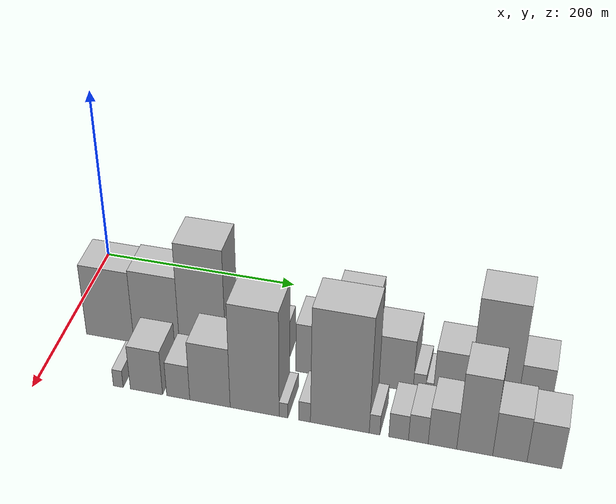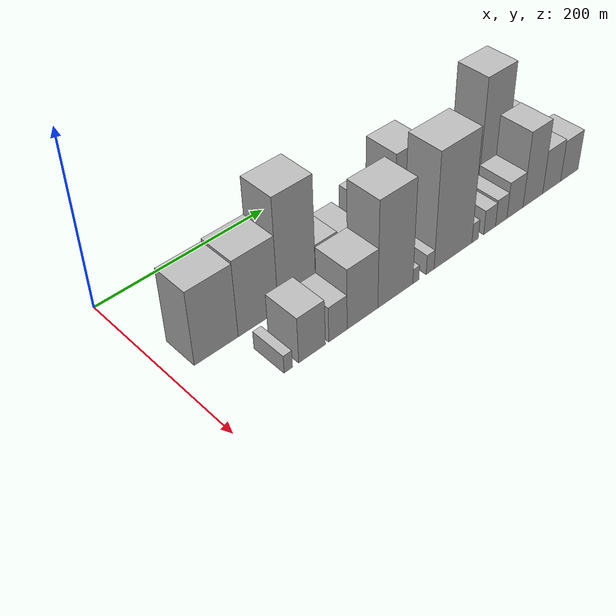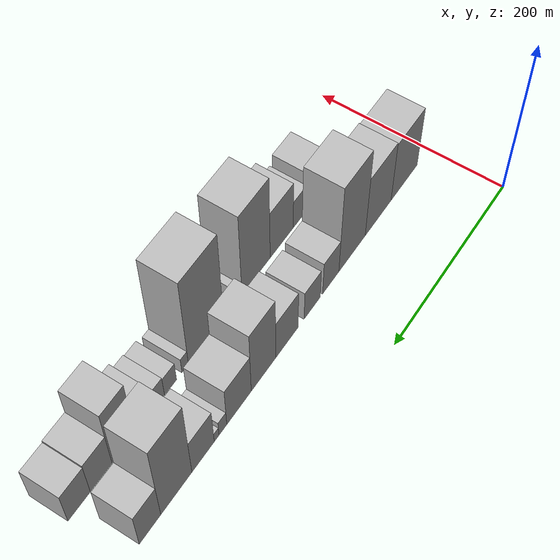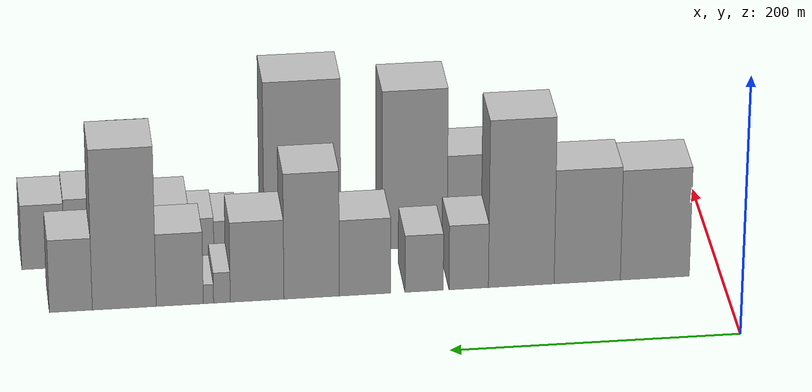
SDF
<sdf version="1.6">
 <world name="default">
  <model name="building_13">
   <static>1</static>
   <pose>100.0000 46.5338 0 0.000000 0.000000 0.000000</pose>
   <link name="link">
    <pose>0 0 43.50 0 0 0</pose>
    <collision name="collision"><geometry><box><size>40.0000 48.5071 87.0000</size></box></geometry></collision>
    <visual name="visual">
     <cast_shadows>0</cast_shadows>
     <geometry><box><size>40.0000 48.5071 87.0000</size></box></geometry>
     <material>
      <script>
       <uri>model://HANNAS_wall/materials/scripts</uri>
       <uri>model://HANNAS_wall/materials/textures</uri>
       <name>vrc/HANNAS_wall</name>
      </script>
     </material>
    </visual>
   </link>
  </model>
  <model name="building_14">
   <static>1</static>
   <pose>100.0000 94.0077 0 0.000000 0.000000 0.000000</pose>
   <link name="link">
    <pose>0 0 45.00 0 0 0</pose>
    <collision name="collision"><geometry><box><size>40.0000 46.4407 90.0000</size></box></geometry></collision>
    <visual name="visual">
     <cast_shadows>0</cast_shadows>
     <geometry><box><size>40.0000 46.4407 90.0000</size></box></geometry>
     <material>
      <script>
       <uri>model://HANNAS_wall/materials/scripts</uri>
       <uri>model://HANNAS_wall/materials/textures</uri>
       <name>vrc/HANNAS_wall</name>
      </script>
     </material>
    </visual>
   </link>
  </model>
  <model name="building_15">
   <static>1</static>
   <pose>100.0000 140.1974 0 0.000000 0.000000 0.000000</pose>
   <link name="link">
    <pose>0 0 66.00 0 0 0</pose>
    <collision name="collision"><geometry><box><size>40.0000 45.9388 132.0000</size></box></geometry></collision>
    <visual name="visual">
     <cast_shadows>0</cast_shadows>
     <geometry><box><size>40.0000 45.9388 132.0000</size></box></geometry>
     <material>
      <script>
       <uri>model://HANNAS_wall/materials/scripts</uri>
       <uri>model://HANNAS_wall/materials/textures</uri>
       <name>vrc/HANNAS_wall</name>
      </script>
     </material>
    </visual>
   </link>
  </model>
  <model name="building_16">
   <static>1</static>
   <pose>100.0000 176.9225 0 0.000000 0.000000 0.000000</pose>
   <link name="link">
    <pose>0 0 25.50 0 0 0</pose>
    <collision name="collision"><geometry><box><size>40.0000 27.5113 51.0000</size></box></geometry></collision>
    <visual name="visual">
     <cast_shadows>0</cast_shadows>
     <geometry><box><size>40.0000 27.5113 51.0000</size></box></geometry>
     <material>
      <script>
       <uri>model://HANNAS_wall/materials/scripts</uri>
       <uri>model://HANNAS_wall/materials/textures</uri>
       <name>vrc/HANNAS_wall</name>
      </script>
     </material>
    </visual>
   </link>
  </model>
  <model name="building_17">
   <static>1</static>
   <pose>100.0000 208.0204 0 0.000000 0.000000 0.000000</pose>
   <link name="link">
    <pose>0 0 22.50 0 0 0</pose>
    <collision name="collision"><geometry><box><size>40.0000 26.6847 45.0000</size></box></geometry></collision>
    <visual name="visual">
     <cast_shadows>0</cast_shadows>
     <geometry><box><size>40.0000 26.6847 45.0000</size></box></geometry>
     <material>
      <script>
       <uri>model://HANNAS_wall/materials/scripts</uri>
       <uri>model://HANNAS_wall/materials/textures</uri>
       <name>vrc/HANNAS_wall</name>
      </script>
     </material>
    </visual>
   </link>
  </model>
  <model name="building_18">
   <static>1</static>
   <pose>100.0000 249.1860 0 0.000000 0.000000 0.000000</pose>
   <link name="link">
    <pose>0 0 30.00 0 0 0</pose>
    <collision name="collision"><geometry><box><size>40.0000 35.6466 60.0000</size></box></geometry></collision>
    <visual name="visual">
     <cast_shadows>0</cast_shadows>
     <geometry><box><size>40.0000 35.6466 60.0000</size></box></geometry>
     <material>
      <script>
       <uri>model://HANNAS_wall/materials/scripts</uri>
       <uri>model://HANNAS_wall/materials/textures</uri>
       <name>vrc/HANNAS_wall</name>
      </script>
     </material>
    </visual>
   </link>
  </model>
  <model name="building_19">
   <static>1</static>
   <pose>100.0000 286.2110 0 0.000000 0.000000 0.000000</pose>
   <link name="link">
    <pose>0 0 49.50 0 0 0</pose>
    <collision name="collision"><geometry><box><size>40.0000 38.4034 99.0000</size></box></geometry></collision>
    <visual name="visual">
     <cast_shadows>0</cast_shadows>
     <geometry><box><size>40.0000 38.4034 99.0000</size></box></geometry>
     <material>
      <script>
       <uri>model://HANNAS_wall/materials/scripts</uri>
       <uri>model://HANNAS_wall/materials/textures</uri>
       <name>vrc/HANNAS_wall</name>
      </script>
     </material>
    </visual>
   </link>
  </model>
  <model name="building_20">
   <static>1</static>
   <pose>100.0000 323.9947 0 0.000000 0.000000 0.000000</pose>
   <link name="link">
    <pose>0 0 31.50 0 0 0</pose>
    <collision name="collision"><geometry><box><size>40.0000 37.1640 63.0000</size></box></geometry></collision>
    <visual name="visual">
     <cast_shadows>0</cast_shadows>
     <geometry><box><size>40.0000 37.1640 63.0000</size></box></geometry>
     <material>
      <script>
       <uri>model://HANNAS_wall/materials/scripts</uri>
       <uri>model://HANNAS_wall/materials/textures</uri>
       <name>vrc/HANNAS_wall</name>
      </script>
     </material>
    </visual>
   </link>
  </model>
  <model name="building_21">
   <static>1</static>
   <pose>100.0000 348.3756 0 0.000000 0.000000 0.000000</pose>
   <link name="link">
    <pose>0 0 12.00 0 0 0</pose>
    <collision name="collision"><geometry><box><size>40.0000 11.5977 24.0000</size></box></geometry></collision>
    <visual name="visual">
     <cast_shadows>0</cast_shadows>
     <geometry><box><size>40.0000 11.5977 24.0000</size></box></geometry>
     <material>
      <script>
       <uri>model://HANNAS_wall/materials/scripts</uri>
       <uri>model://HANNAS_wall/materials/textures</uri>
       <name>vrc/HANNAS_wall</name>
      </script>
     </material>
    </visual>
   </link>
  </model>
  <model name="building_22">
   <static>1</static>
   <pose>100.0000 357.6809 0 0.000000 0.000000 0.000000</pose>
   <link name="link">
    <pose>0 0 7.50 0 0 0</pose>
    <collision name="collision"><geometry><box><size>40.0000 7.0130 15.0000</size></box></geometry></collision>
    <visual name="visual">
     <cast_shadows>0</cast_shadows>
     <geometry><box><size>40.0000 7.0130 15.0000</size></box></geometry>
     <material>
      <script>
       <uri>model://HANNAS_wall/materials/scripts</uri>
       <uri>model://HANNAS_wall/materials/textures</uri>
       <name>vrc/HANNAS_wall</name>
      </script>
     </material>
    </visual>
   </link>
  </model>
  <model name="building_23">
   <static>1</static>
   <pose>100.0000 377.4789 0 0.000000 0.000000 0.000000</pose>
   <link name="link">
    <pose>0 0 28.50 0 0 0</pose>
    <collision name="collision"><geometry><box><size>40.0000 32.5830 57.0000</size></box></geometry></collision>
    <visual name="visual">
     <cast_shadows>0</cast_shadows>
     <geometry><box><size>40.0000 32.5830 57.0000</size></box></geometry>
     <material>
      <script>
       <uri>model://HANNAS_wall/materials/scripts</uri>
       <uri>model://HANNAS_wall/materials/textures</uri>
       <name>vrc/HANNAS_wall</name>
      </script>
     </material>
    </visual>
   </link>
  </model>
  <model name="building_24">
   <static>1</static>
   <pose>100.0000 415.7786 0 0.000000 0.000000 0.000000</pose>
   <link name="link">
    <pose>0 0 63.00 0 0 0</pose>
    <collision name="collision"><geometry><box><size>40.0000 44.0164 126.0000</size></box></geometry></collision>
    <visual name="visual">
     <cast_shadows>0</cast_shadows>
     <geometry><box><size>40.0000 44.0164 126.0000</size></box></geometry>
     <material>
      <script>
       <uri>model://HANNAS_wall/materials/scripts</uri>
       <uri>model://HANNAS_wall/materials/textures</uri>
       <name>vrc/HANNAS_wall</name>
      </script>
     </material>
    </visual>
   </link>
  </model>
  <model name="building_25">
   <static>1</static>
   <pose>100.0000 452.5934 0 0.000000 0.000000 0.000000</pose>
   <link name="link">
    <pose>0 0 28.50 0 0 0</pose>
    <collision name="collision"><geometry><box><size>40.0000 29.6131 57.0000</size></box></geometry></collision>
    <visual name="visual">
     <cast_shadows>0</cast_shadows>
     <geometry><box><size>40.0000 29.6131 57.0000</size></box></geometry>
     <material>
      <script>
       <uri>model://HANNAS_wall/materials/scripts</uri>
       <uri>model://HANNAS_wall/materials/textures</uri>
       <name>vrc/HANNAS_wall</name>
      </script>
     </material>
    </visual>
   </link>
  </model>
  <model name="building_40">
   <static>1</static>
   <pose>160.0000 76.8066 0 0.000000 0.000000 0.000000</pose>
   <link name="link">
    <pose>0 0 10.50 0 0 0</pose>
    <collision name="collision"><geometry><box><size>40.0000 9.6211 21.0000</size></box></geometry></collision>
    <visual name="visual">
     <cast_shadows>0</cast_shadows>
     <geometry><box><size>40.0000 9.6211 21.0000</size></box></geometry>
     <material>
      <script>
       <uri>model://HANNAS_wall/materials/scripts</uri>
       <uri>model://HANNAS_wall/materials/textures</uri>
       <name>vrc/HANNAS_wall</name>
      </script>
     </material>
    </visual>
   </link>
  </model>
  <model name="building_41">
   <static>1</static>
   <pose>160.0000 104.2655 0 0.000000 0.000000 0.000000</pose>
   <link name="link">
    <pose>0 0 27.00 0 0 0</pose>
    <collision name="collision"><geometry><box><size>40.0000 31.2967 54.0000</size></box></geometry></collision>
    <visual name="visual">
     <cast_shadows>0</cast_shadows>
     <geometry><box><size>40.0000 31.2967 54.0000</size></box></geometry>
     <material>
      <script>
       <uri>model://HANNAS_wall/materials/scripts</uri>
       <uri>model://HANNAS_wall/materials/textures</uri>
       <name>vrc/HANNAS_wall</name>
      </script>
     </material>
    </visual>
   </link>
  </model>
  <model name="building_42">
   <static>1</static>
   <pose>160.0000 135.0148 0 0.000000 0.000000 0.000000</pose>
   <link name="link">
    <pose>0 0 21.00 0 0 0</pose>
    <collision name="collision"><geometry><box><size>40.0000 22.2020 42.0000</size></box></geometry></collision>
    <visual name="visual">
     <cast_shadows>0</cast_shadows>
     <geometry><box><size>40.0000 22.2020 42.0000</size></box></geometry>
     <material>
      <script>
       <uri>model://HANNAS_wall/materials/scripts</uri>
       <uri>model://HANNAS_wall/materials/textures</uri>
       <name>vrc/HANNAS_wall</name>
      </script>
     </material>
    </visual>
   </link>
  </model>
  <model name="building_43">
   <static>1</static>
   <pose>160.0000 165.3646 0 0.000000 0.000000 0.000000</pose>
   <link name="link">
    <pose>0 0 36.00 0 0 0</pose>
    <collision name="collision"><geometry><box><size>40.0000 38.4974 72.0000</size></box></geometry></collision>
    <visual name="visual">
     <cast_shadows>0</cast_shadows>
     <geometry><box><size>40.0000 38.4974 72.0000</size></box></geometry>
     <material>
      <script>
       <uri>model://HANNAS_wall/materials/scripts</uri>
       <uri>model://HANNAS_wall/materials/textures</uri>
       <name>vrc/HANNAS_wall</name>
      </script>
     </material>
    </visual>
   </link>
  </model>
  <model name="building_44">
   <static>1</static>
   <pose>160.0000 207.6173 0 0.000000 0.000000 0.000000</pose>
   <link name="link">
    <pose>0 0 63.00 0 0 0</pose>
    <collision name="collision"><geometry><box><size>40.0000 46.0081 126.0000</size></box></geometry></collision>
    <visual name="visual">
     <cast_shadows>0</cast_shadows>
     <geometry><box><size>40.0000 46.0081 126.0000</size></box></geometry>
     <material>
      <script>
       <uri>model://HANNAS_wall/materials/scripts</uri>
       <uri>model://HANNAS_wall/materials/textures</uri>
       <name>vrc/HANNAS_wall</name>
      </script>
     </material>
    </visual>
   </link>
  </model>
  <model name="building_45">
   <static>1</static>
   <pose>160.0000 234.7247 0 0.000000 0.000000 0.000000</pose>
   <link name="link">
    <pose>0 0 9.00 0 0 0</pose>
    <collision name="collision"><geometry><box><size>40.0000 8.2066 18.0000</size></box></geometry></collision>
    <visual name="visual">
     <cast_shadows>0</cast_shadows>
     <geometry><box><size>40.0000 8.2066 18.0000</size></box></geometry>
     <material>
      <script>
       <uri>model://HANNAS_wall/materials/scripts</uri>
       <uri>model://HANNAS_wall/materials/textures</uri>
       <name>vrc/HANNAS_wall</name>
      </script>
     </material>
    </visual>
   </link>
  </model>
  <model name="building_46">
   <static>1</static>
   <pose>160.0000 254.2517 0 0.000000 0.000000 0.000000</pose>
   <link name="link">
    <pose>0 0 12.00 0 0 0</pose>
    <collision name="collision"><geometry><box><size>40.0000 10.8474 24.0000</size></box></geometry></collision>
    <visual name="visual">
     <cast_shadows>0</cast_shadows>
     <geometry><box><size>40.0000 10.8474 24.0000</size></box></geometry>
     <material>
      <script>
       <uri>model://HANNAS_wall/materials/scripts</uri>
       <uri>model://HANNAS_wall/materials/textures</uri>
       <name>vrc/HANNAS_wall</name>
      </script>
     </material>
    </visual>
   </link>
  </model>
  <model name="building_47">
   <static>1</static>
   <pose>160.0000 286.6121 0 0.000000 0.000000 0.000000</pose>
   <link name="link">
    <pose>0 0 69.00 0 0 0</pose>
    <collision name="collision"><geometry><box><size>40.0000 53.8734 138.0000</size></box></geometry></collision>
    <visual name="visual">
     <cast_shadows>0</cast_shadows>
     <geometry><box><size>40.0000 53.8734 138.0000</size></box></geometry>
     <material>
      <script>
       <uri>model://HANNAS_wall/materials/scripts</uri>
       <uri>model://HANNAS_wall/materials/textures</uri>
       <name>vrc/HANNAS_wall</name>
      </script>
     </material>
    </visual>
   </link>
  </model>
  <model name="building_48">
   <static>1</static>
   <pose>160.0000 318.3776 0 0.000000 0.000000 0.000000</pose>
   <link name="link">
    <pose>0 0 12.00 0 0 0</pose>
    <collision name="collision"><geometry><box><size>40.0000 9.6577 24.0000</size></box></geometry></collision>
    <visual name="visual">
     <cast_shadows>0</cast_shadows>
     <geometry><box><size>40.0000 9.6577 24.0000</size></box></geometry>
     <material>
      <script>
       <uri>model://HANNAS_wall/materials/scripts</uri>
       <uri>model://HANNAS_wall/materials/textures</uri>
       <name>vrc/HANNAS_wall</name>
      </script>
     </material>
    </visual>
   </link>
  </model>
  <model name="building_49">
   <static>1</static>
   <pose>160.0000 340.0626 0 0.000000 0.000000 0.000000</pose>
   <link name="link">
    <pose>0 0 15.00 0 0 0</pose>
    <collision name="collision"><geometry><box><size>40.0000 17.7123 30.0000</size></box></geometry></collision>
    <visual name="visual">
     <cast_shadows>0</cast_shadows>
     <geometry><box><size>40.0000 17.7123 30.0000</size></box></geometry>
     <material>
      <script>
       <uri>model://HANNAS_wall/materials/scripts</uri>
       <uri>model://HANNAS_wall/materials/textures</uri>
       <name>vrc/HANNAS_wall</name>
      </script>
     </material>
    </visual>
   </link>
  </model>
  <model name="building_50">
   <static>1</static>
   <pose>160.0000 357.7189 0 0.000000 0.000000 0.000000</pose>
   <link name="link">
    <pose>0 0 16.50 0 0 0</pose>
    <collision name="collision"><geometry><box><size>40.0000 17.6002 33.0000</size></box></geometry></collision>
    <visual name="visual">
     <cast_shadows>0</cast_shadows>
     <geometry><box><size>40.0000 17.6002 33.0000</size></box></geometry>
     <material>
      <script>
       <uri>model://HANNAS_wall/materials/scripts</uri>
       <uri>model://HANNAS_wall/materials/textures</uri>
       <name>vrc/HANNAS_wall</name>
      </script>
     </material>
    </visual>
   </link>
  </model>
  <model name="building_51">
   <static>1</static>
   <pose>160.0000 379.1594 0 0.000000 0.000000 0.000000</pose>
   <link name="link">
    <pose>0 0 22.50 0 0 0</pose>
    <collision name="collision"><geometry><box><size>40.0000 25.2810 45.0000</size></box></geometry></collision>
    <visual name="visual">
     <cast_shadows>0</cast_shadows>
     <geometry><box><size>40.0000 25.2810 45.0000</size></box></geometry>
     <material>
      <script>
       <uri>model://HANNAS_wall/materials/scripts</uri>
       <uri>model://HANNAS_wall/materials/textures</uri>
       <name>vrc/HANNAS_wall</name>
      </script>
     </material>
    </visual>
   </link>
  </model>
  <model name="building_52">
   <static>1</static>
   <pose>160.0000 407.6379 0 0.000000 0.000000 0.000000</pose>
   <link name="link">
    <pose>0 0 46.50 0 0 0</pose>
    <collision name="collision"><geometry><box><size>40.0000 31.6759 93.0000</size></box></geometry></collision>
    <visual name="visual">
     <cast_shadows>0</cast_shadows>
     <geometry><box><size>40.0000 31.6759 93.0000</size></box></geometry>
     <material>
      <script>
       <uri>model://HANNAS_wall/materials/scripts</uri>
       <uri>model://HANNAS_wall/materials/textures</uri>
       <name>vrc/HANNAS_wall</name>
      </script>
     </material>
    </visual>
   </link>
  </model>
  <model name="building_53">
   <static>1</static>
   <pose>160.0000 438.3774 0 0.000000 0.000000 0.000000</pose>
   <link name="link">
    <pose>0 0 27.00 0 0 0</pose>
    <collision name="collision"><geometry><box><size>40.0000 29.8031 54.0000</size></box></geometry></collision>
    <visual name="visual">
     <cast_shadows>0</cast_shadows>
     <geometry><box><size>40.0000 29.8031 54.0000</size></box></geometry>
     <material>
      <script>
       <uri>model://HANNAS_wall/materials/scripts</uri>
       <uri>model://HANNAS_wall/materials/textures</uri>
       <name>vrc/HANNAS_wall</name>
      </script>
     </material>
    </visual>
   </link>
  </model>
  <model name="building_54">
   <static>1</static>
   <pose>160.0000 468.2638 0 0.000000 0.000000 0.000000</pose>
   <link name="link">
    <pose>0 0 25.50 0 0 0</pose>
    <collision name="collision"><geometry><box><size>40.0000 29.9698 51.0000</size></box></geometry></collision>
    <visual name="visual">
     <cast_shadows>0</cast_shadows>
     <geometry><box><size>40.0000 29.9698 51.0000</size></box></geometry>
     <material>
      <script>
       <uri>model://HANNAS_wall/materials/scripts</uri>
       <uri>model://HANNAS_wall/materials/textures</uri>
       <name>vrc/HANNAS_wall</name>
      </script>
     </material>
    </visual>
   </link>
  </model>
 </world>
</sdf>
